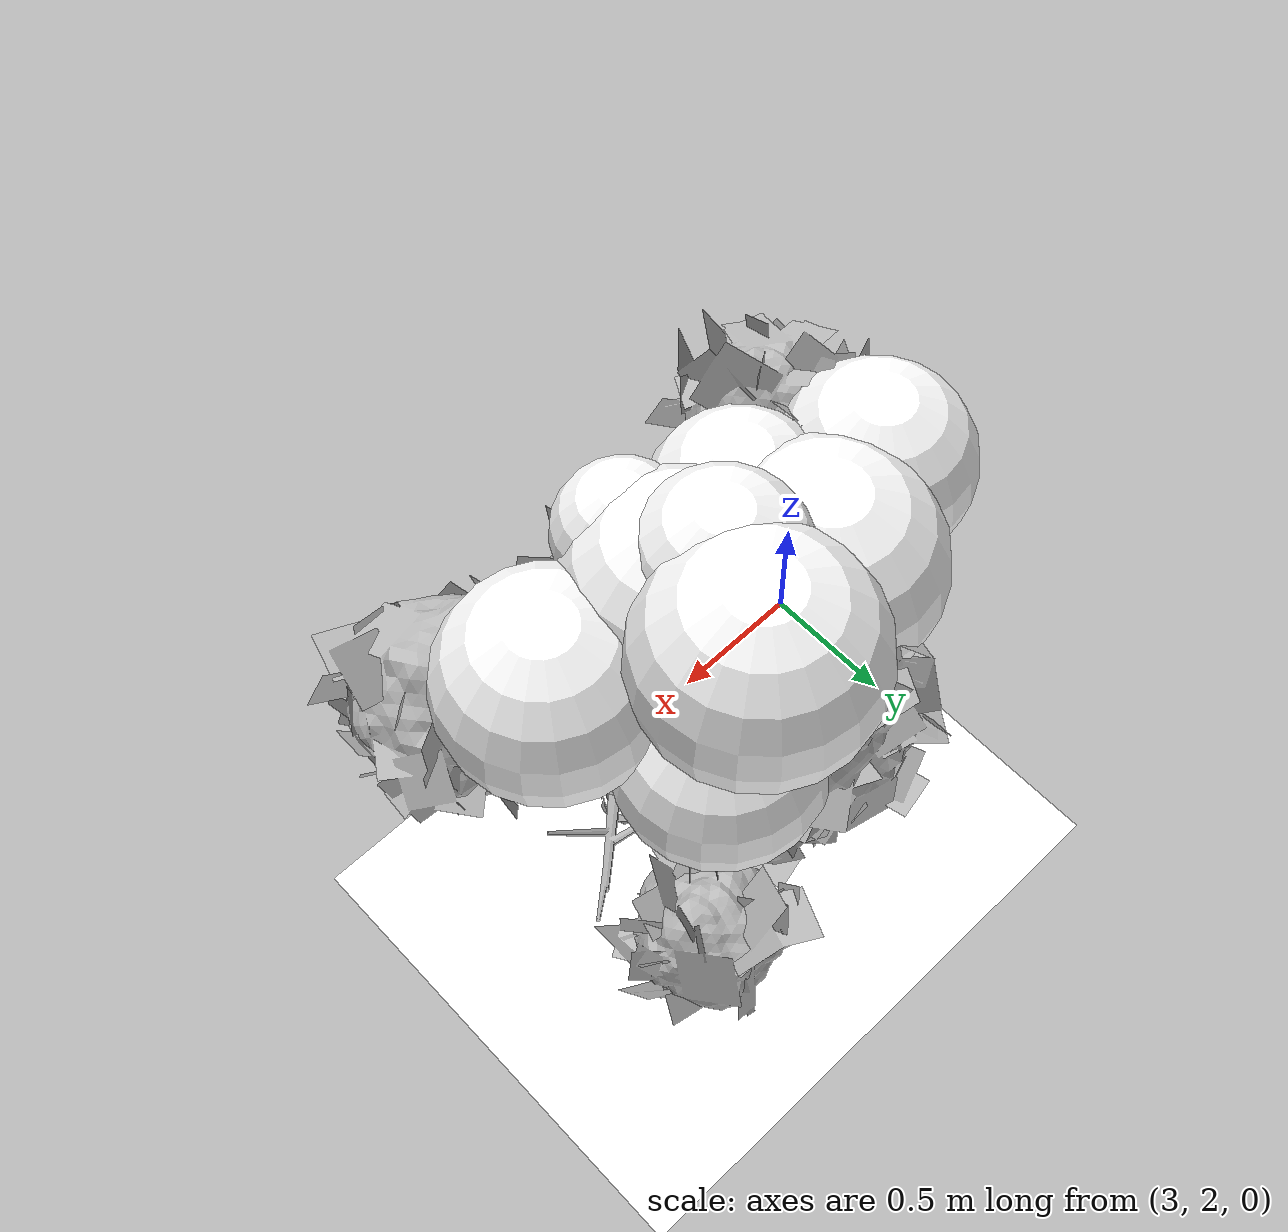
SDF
<sdf version="1.11">
 <world name="peach_orchard">
  <model name="ground">
   <static>true</static>
   <link name="link">
    <visual name="soil">
     <geometry><plane><normal>0 0 1</normal><size>32 22</size></plane></geometry>
     <material>
      <ambient>1 1 1 1</ambient>
      <diffuse>1 1 1 1</diffuse>
      <specular>0.1 0.1 0.1 1</specular>
      <pbr>
       <metal>
        <albedo_map>textures/soil_albedo.png</albedo_map>
        <normal_map type="tangent">textures/soil_normal.png</normal_map>
        <roughness>0.95</roughness>
        <metalness>0</metalness>
       </metal>
      </pbr>
     </material>
    </visual>
    <collision name="c_soil">
     <geometry><plane><normal>0 0 1</normal><size>32 22</size></plane></geometry>
    </collision>
   </link>
  </model>
  <model name="tree_r3_t4">
   <pose>4 2.2 0 0 0 0</pose>
   <static>true</static>
   <link name="link">
    <visual name="tree_mesh">
     <pose>0 0 0 0 0 0.0693268</pose>
     <geometry>
      <mesh><uri>model://peach_sim/meshes/peach_tree_a.glb</uri><scale>0.965581 0.965581 0.965581</scale></mesh>
     </geometry>
    </visual>
    <visual name="trunk_0">
     <pose>0 0 0.177539 0 0 0</pose>
     <geometry><cylinder><radius>0.0533133</radius><length>0.355077</length></cylinder></geometry>
     <material>
      <ambient>1 1 1 1</ambient>
      <diffuse>1 1 1 1</diffuse>
      <specular>0.1 0.1 0.1 1</specular>
      <pbr>
       <metal>
        <albedo_map>textures/bark_albedo.png</albedo_map>
        <normal_map type="tangent">textures/bark_normal.png</normal_map>
        <roughness>0.9</roughness>
        <metalness>0</metalness>
       </metal>
      </pbr>
     </material>
    </visual>
    <collision name="c_trunk_0">
     <pose>0 0 0.177539 0 0 0</pose>
     <geometry><cylinder><radius>0.0533133</radius><length>0.355077</length></cylinder></geometry>
    </collision>
    <visual name="trunk_1">
     <pose>0 0 0.500336 0 0 0</pose>
     <geometry><cylinder><radius>0.0383856</radius><length>0.290518</length></cylinder></geometry>
     <material>
      <ambient>1 1 1 1</ambient>
      <diffuse>1 1 1 1</diffuse>
      <specular>0.1 0.1 0.1 1</specular>
      <pbr>
       <metal>
        <albedo_map>textures/bark_albedo.png</albedo_map>
        <normal_map type="tangent">textures/bark_normal.png</normal_map>
        <roughness>0.9</roughness>
        <metalness>0</metalness>
       </metal>
      </pbr>
     </material>
    </visual>
    <collision name="c_trunk_1">
     <pose>0 0 0.500336 0 0 0</pose>
     <geometry><cylinder><radius>0.0383856</radius><length>0.290518</length></cylinder></geometry>
    </collision>
    <visual name="root_flare">
     <pose>0 0 0.035 0 0 0</pose>
     <geometry><cylinder><radius>0.0773043</radius><length>0.07</length></cylinder></geometry>
     <material>
      <ambient>1 1 1 1</ambient>
      <diffuse>1 1 1 1</diffuse>
      <specular>0.1 0.1 0.1 1</specular>
      <pbr>
       <metal>
        <albedo_map>textures/bark_albedo.png</albedo_map>
        <normal_map type="tangent">textures/bark_normal.png</normal_map>
        <roughness>0.95</roughness>
        <metalness>0</metalness>
       </metal>
      </pbr>
     </material>
    </visual>
    <visual name="scaffold_0">
     <pose>-0.0324891 0.293679 0.837471 0 0.88148 1.68098</pose>
     <geometry><cylinder><radius>0.022</radius><length>0.765786</length></cylinder></geometry>
     <material>
      <ambient>1 1 1 1</ambient>
      <diffuse>1 1 1 1</diffuse>
      <specular>0.1 0.1 0.1 1</specular>
      <pbr>
       <metal>
        <albedo_map>textures/bark_albedo.png</albedo_map>
        <normal_map type="tangent">textures/bark_normal.png</normal_map>
        <roughness>0.9</roughness>
        <metalness>0</metalness>
       </metal>
      </pbr>
     </material>
    </visual>
    <collision name="c_scaffold_0">
     <pose>-0.0324891 0.293679 0.837471 0 0.88148 1.68098</pose>
     <geometry><cylinder><radius>0.022</radius><length>0.765786</length></cylinder></geometry>
    </collision>
    <visual name="branchlet_0_0">
     <pose>-0.0448191 0.303635 1.01268 0 0.648829 -1.60466</pose>
     <geometry><cylinder><radius>0.012</radius><length>0.257342</length></cylinder></geometry>
     <material>
      <ambient>1 1 1 1</ambient>
      <diffuse>1 1 1 1</diffuse>
      <specular>0.1 0.1 0.1 1</specular>
      <pbr>
       <metal>
        <albedo_map>textures/bark_albedo.png</albedo_map>
        <normal_map type="tangent">textures/bark_normal.png</normal_map>
        <roughness>0.9</roughness>
        <metalness>0</metalness>
       </metal>
      </pbr>
     </material>
    </visual>
    <visual name="branchlet_0_1">
     <pose>-0.160521 0.280284 0.937951 0 1.24208 -2.58247</pose>
     <geometry><cylinder><radius>0.012</radius><length>0.301944</length></cylinder></geometry>
     <material>
      <ambient>1 1 1 1</ambient>
      <diffuse>1 1 1 1</diffuse>
      <specular>0.1 0.1 0.1 1</specular>
      <pbr>
       <metal>
        <albedo_map>textures/bark_albedo.png</albedo_map>
        <normal_map type="tangent">textures/bark_normal.png</normal_map>
        <roughness>0.9</roughness>
        <metalness>0</metalness>
       </metal>
      </pbr>
     </material>
    </visual>
    <visual name="scaffold_1">
     <pose>0.171014 0.343476 0.856422 0 0.970841 1.10884</pose>
     <geometry><cylinder><radius>0.022</radius><length>0.929762</length></cylinder></geometry>
     <material>
      <ambient>1 1 1 1</ambient>
      <diffuse>1 1 1 1</diffuse>
      <specular>0.1 0.1 0.1 1</specular>
      <pbr>
       <metal>
        <albedo_map>textures/bark_albedo.png</albedo_map>
        <normal_map type="tangent">textures/bark_normal.png</normal_map>
        <roughness>0.9</roughness>
        <metalness>0</metalness>
       </metal>
      </pbr>
     </material>
    </visual>
    <collision name="c_scaffold_1">
     <pose>0.171014 0.343476 0.856422 0 0.970841 1.10884</pose>
     <geometry><cylinder><radius>0.022</radius><length>0.929762</length></cylinder></geometry>
    </collision>
    <visual name="branchlet_1_0">
     <pose>0.25733 0.246177 0.930743 0 1.06347 -0.861131</pose>
     <geometry><cylinder><radius>0.012</radius><length>0.299592</length></cylinder></geometry>
     <material>
      <ambient>1 1 1 1</ambient>
      <diffuse>1 1 1 1</diffuse>
      <specular>0.1 0.1 0.1 1</specular>
      <pbr>
       <metal>
        <albedo_map>textures/bark_albedo.png</albedo_map>
        <normal_map type="tangent">textures/bark_normal.png</normal_map>
        <roughness>0.9</roughness>
        <metalness>0</metalness>
       </metal>
      </pbr>
     </material>
    </visual>
    <visual name="branchlet_1_1">
     <pose>0.246718 0.573461 0.966358 0 1.41756 1.43242</pose>
     <geometry><cylinder><radius>0.012</radius><length>0.221079</length></cylinder></geometry>
     <material>
      <ambient>1 1 1 1</ambient>
      <diffuse>1 1 1 1</diffuse>
      <specular>0.1 0.1 0.1 1</specular>
      <pbr>
       <metal>
        <albedo_map>textures/bark_albedo.png</albedo_map>
        <normal_map type="tangent">textures/bark_normal.png</normal_map>
        <roughness>0.9</roughness>
        <metalness>0</metalness>
       </metal>
      </pbr>
     </material>
    </visual>
    <visual name="scaffold_2">
     <pose>-0.240474 0.11956 0.806136 0 0.902117 2.6802</pose>
     <geometry><cylinder><radius>0.022</radius><length>0.684533</length></cylinder></geometry>
     <material>
      <ambient>1 1 1 1</ambient>
      <diffuse>1 1 1 1</diffuse>
      <specular>0.1 0.1 0.1 1</specular>
      <pbr>
       <metal>
        <albedo_map>textures/bark_albedo.png</albedo_map>
        <normal_map type="tangent">textures/bark_normal.png</normal_map>
        <roughness>0.9</roughness>
        <metalness>0</metalness>
       </metal>
      </pbr>
     </material>
    </visual>
    <collision name="c_scaffold_2">
     <pose>-0.240474 0.11956 0.806136 0 0.902117 2.6802</pose>
     <geometry><cylinder><radius>0.022</radius><length>0.684533</length></cylinder></geometry>
    </collision>
    <visual name="branchlet_2_0">
     <pose>-0.33321 0.162407 0.894194 0 0.867554 2.70313</pose>
     <geometry><cylinder><radius>0.012</radius><length>0.333808</length></cylinder></geometry>
     <material>
      <ambient>1 1 1 1</ambient>
      <diffuse>1 1 1 1</diffuse>
      <specular>0.1 0.1 0.1 1</specular>
      <pbr>
       <metal>
        <albedo_map>textures/bark_albedo.png</albedo_map>
        <normal_map type="tangent">textures/bark_normal.png</normal_map>
        <roughness>0.9</roughness>
        <metalness>0</metalness>
       </metal>
      </pbr>
     </material>
    </visual>
    <visual name="branchlet_2_1">
     <pose>-0.315838 -0.0126756 0.889428 0 1.08022 -2.07167</pose>
     <geometry><cylinder><radius>0.012</radius><length>0.344826</length></cylinder></geometry>
     <material>
      <ambient>1 1 1 1</ambient>
      <diffuse>1 1 1 1</diffuse>
      <specular>0.1 0.1 0.1 1</specular>
      <pbr>
       <metal>
        <albedo_map>textures/bark_albedo.png</albedo_map>
        <normal_map type="tangent">textures/bark_normal.png</normal_map>
        <roughness>0.9</roughness>
        <metalness>0</metalness>
       </metal>
      </pbr>
     </material>
    </visual>
    <visual name="canopy_0">
     <pose>0.113352 0.673372 2.1195 0 0 0</pose>
     <geometry><sphere><radius>0.307069</radius></sphere></geometry>
     <material>
      <ambient>1 1 1 1</ambient>
      <diffuse>1 1 1 1</diffuse>
      <specular>0.1 0.1 0.1 1</specular>
      <pbr>
       <metal>
        <albedo_map>textures/leaf_albedo.png</albedo_map>
        <normal_map type="tangent">textures/leaf_normal.png</normal_map>
        <roughness>0.85</roughness>
        <metalness>0</metalness>
       </metal>
      </pbr>
     </material>
    </visual>
    <collision name="c_canopy_0">
     <pose>0.113352 0.673372 2.1195 0 0 0</pose>
     <geometry><sphere><radius>0.307069</radius></sphere></geometry>
    </collision>
    <visual name="canopy_1">
     <pose>0.0823958 0.199726 2.06311 0 0 0</pose>
     <geometry><sphere><radius>0.180179</radius></sphere></geometry>
     <material>
      <ambient>1 1 1 1</ambient>
      <diffuse>1 1 1 1</diffuse>
      <specular>0.1 0.1 0.1 1</specular>
      <pbr>
       <metal>
        <albedo_map>textures/leaf_albedo.png</albedo_map>
        <normal_map type="tangent">textures/leaf_normal.png</normal_map>
        <roughness>0.85</roughness>
        <metalness>0</metalness>
       </metal>
      </pbr>
     </material>
    </visual>
    <collision name="c_canopy_1">
     <pose>0.0823958 0.199726 2.06311 0 0 0</pose>
     <geometry><sphere><radius>0.180179</radius></sphere></geometry>
    </collision>
    <visual name="canopy_2">
     <pose>-0.227088 0.274041 1.93861 0 0 0</pose>
     <geometry><sphere><radius>0.246663</radius></sphere></geometry>
     <material>
      <ambient>1 1 1 1</ambient>
      <diffuse>1 1 1 1</diffuse>
      <specular>0.1 0.1 0.1 1</specular>
      <pbr>
       <metal>
        <albedo_map>textures/leaf_albedo.png</albedo_map>
        <normal_map type="tangent">textures/leaf_normal.png</normal_map>
        <roughness>0.85</roughness>
        <metalness>0</metalness>
       </metal>
      </pbr>
     </material>
    </visual>
    <collision name="c_canopy_2">
     <pose>-0.227088 0.274041 1.93861 0 0 0</pose>
     <geometry><sphere><radius>0.246663</radius></sphere></geometry>
    </collision>
    <visual name="canopy_3">
     <pose>-0.251343 0.532139 1.93676 0 0 0</pose>
     <geometry><sphere><radius>0.314678</radius></sphere></geometry>
     <material>
      <ambient>1 1 1 1</ambient>
      <diffuse>1 1 1 1</diffuse>
      <specular>0.1 0.1 0.1 1</specular>
      <pbr>
       <metal>
        <albedo_map>textures/leaf_albedo.png</albedo_map>
        <normal_map type="tangent">textures/leaf_normal.png</normal_map>
        <roughness>0.85</roughness>
        <metalness>0</metalness>
       </metal>
      </pbr>
     </material>
    </visual>
    <visual name="canopy_4">
     <pose>0.274199 0.190933 1.66528 0 0 0</pose>
     <geometry><sphere><radius>0.243693</radius></sphere></geometry>
     <material>
      <ambient>1 1 1 1</ambient>
      <diffuse>1 1 1 1</diffuse>
      <specular>0.1 0.1 0.1 1</specular>
      <pbr>
       <metal>
        <albedo_map>textures/leaf_albedo.png</albedo_map>
        <normal_map type="tangent">textures/leaf_normal.png</normal_map>
        <roughness>0.85</roughness>
        <metalness>0</metalness>
       </metal>
      </pbr>
     </material>
    </visual>
    <visual name="canopy_5">
     <pose>-0.21995 0.462128 1.6005 0 0 0</pose>
     <geometry><sphere><radius>0.244752</radius></sphere></geometry>
     <material>
      <ambient>1 1 1 1</ambient>
      <diffuse>1 1 1 1</diffuse>
      <specular>0.1 0.1 0.1 1</specular>
      <pbr>
       <metal>
        <albedo_map>textures/leaf_albedo.png</albedo_map>
        <normal_map type="tangent">textures/leaf_normal.png</normal_map>
        <roughness>0.85</roughness>
        <metalness>0</metalness>
       </metal>
      </pbr>
     </material>
    </visual>
    <visual name="canopy_6">
     <pose>0.208736 0.660892 1.71647 0 0 0</pose>
     <geometry><sphere><radius>0.278551</radius></sphere></geometry>
     <material>
      <ambient>1 1 1 1</ambient>
      <diffuse>1 1 1 1</diffuse>
      <specular>0.1 0.1 0.1 1</specular>
      <pbr>
       <metal>
        <albedo_map>textures/leaf_albedo.png</albedo_map>
        <normal_map type="tangent">textures/leaf_normal.png</normal_map>
        <roughness>0.85</roughness>
        <metalness>0</metalness>
       </metal>
      </pbr>
     </material>
    </visual>
    <visual name="canopy_7">
     <pose>0.0155286 0.45758 2.14714 0 0 0</pose>
     <geometry><sphere><radius>0.228274</radius></sphere></geometry>
     <material>
      <ambient>1 1 1 1</ambient>
      <diffuse>1 1 1 1</diffuse>
      <specular>0.1 0.1 0.1 1</specular>
      <pbr>
       <metal>
        <albedo_map>textures/leaf_albedo.png</albedo_map>
        <normal_map type="tangent">textures/leaf_normal.png</normal_map>
        <roughness>0.85</roughness>
        <metalness>0</metalness>
       </metal>
      </pbr>
     </material>
    </visual>
    <visual name="canopy_8">
     <pose>-0.569821 0.407436 1.92161 0 0 0</pose>
     <geometry><sphere><radius>0.265573</radius></sphere></geometry>
     <material>
      <ambient>1 1 1 1</ambient>
      <diffuse>1 1 1 1</diffuse>
      <specular>0.1 0.1 0.1 1</specular>
      <pbr>
       <metal>
        <albedo_map>textures/leaf_albedo.png</albedo_map>
        <normal_map type="tangent">textures/leaf_normal.png</normal_map>
        <roughness>0.85</roughness>
        <metalness>0</metalness>
       </metal>
      </pbr>
     </material>
    </visual>
    <visual name="canopy_9">
     <pose>0.0727461 0.373927 1.99447 0 0 0</pose>
     <geometry><sphere><radius>0.297435</radius></sphere></geometry>
     <material>
      <ambient>1 1 1 1</ambient>
      <diffuse>1 1 1 1</diffuse>
      <specular>0.1 0.1 0.1 1</specular>
      <pbr>
       <metal>
        <albedo_map>textures/leaf_albedo.png</albedo_map>
        <normal_map type="tangent">textures/leaf_normal.png</normal_map>
        <roughness>0.85</roughness>
        <metalness>0</metalness>
       </metal>
      </pbr>
     </material>
    </visual>
    <visual name="canopy_10">
     <pose>0.42894 0.312975 1.90906 0 0 0</pose>
     <geometry><sphere><radius>0.290982</radius></sphere></geometry>
     <material>
      <ambient>1 1 1 1</ambient>
      <diffuse>1 1 1 1</diffuse>
      <specular>0.1 0.1 0.1 1</specular>
      <pbr>
       <metal>
        <albedo_map>textures/leaf_albedo.png</albedo_map>
        <normal_map type="tangent">textures/leaf_normal.png</normal_map>
        <roughness>0.85</roughness>
        <metalness>0</metalness>
       </metal>
      </pbr>
     </material>
    </visual>
    <visual name="canopy_11">
     <pose>-0.0367207 0.316789 1.6843 0 0 0</pose>
     <geometry><sphere><radius>0.1842</radius></sphere></geometry>
     <material>
      <ambient>1 1 1 1</ambient>
      <diffuse>1 1 1 1</diffuse>
      <specular>0.1 0.1 0.1 1</specular>
      <pbr>
       <metal>
        <albedo_map>textures/leaf_albedo.png</albedo_map>
        <normal_map type="tangent">textures/leaf_normal.png</normal_map>
        <roughness>0.85</roughness>
        <metalness>0</metalness>
       </metal>
      </pbr>
     </material>
    </visual>
    <visual name="foliage_0">
     <pose>0.145383 0.265055 1.35344 0 0 0</pose>
     <geometry><sphere><radius>0.116427</radius></sphere></geometry>
     <material>
      <ambient>1 1 1 1</ambient>
      <diffuse>1 1 1 1</diffuse>
      <specular>0.1 0.1 0.1 1</specular>
      <pbr>
       <metal>
        <albedo_map>textures/leaf_albedo.png</albedo_map>
        <normal_map type="tangent">textures/leaf_normal.png</normal_map>
        <roughness>0.85</roughness>
        <metalness>0</metalness>
       </metal>
      </pbr>
     </material>
    </visual>
    <visual name="foliage_4">
     <pose>0.216252 -0.0793563 1.45282 0 0 0</pose>
     <geometry><sphere><radius>0.112938</radius></sphere></geometry>
     <material>
      <ambient>1 1 1 1</ambient>
      <diffuse>1 1 1 1</diffuse>
      <specular>0.1 0.1 0.1 1</specular>
      <pbr>
       <metal>
        <albedo_map>textures/leaf_albedo.png</albedo_map>
        <normal_map type="tangent">textures/leaf_normal.png</normal_map>
        <roughness>0.85</roughness>
        <metalness>0</metalness>
       </metal>
      </pbr>
     </material>
    </visual>
    <visual name="twig_0">
     <pose>0.191111 0.326369 1.54768 0 0.528572 -2.70745</pose>
     <geometry><cylinder><radius>0.007</radius><length>0.143297</length></cylinder></geometry>
     <material>
      <ambient>1 1 1 1</ambient>
      <diffuse>1 1 1 1</diffuse>
      <specular>0.1 0.1 0.1 1</specular>
      <pbr>
       <metal>
        <albedo_map>textures/bark_albedo.png</albedo_map>
        <normal_map type="tangent">textures/bark_normal.png</normal_map>
        <roughness>0.9</roughness>
        <metalness>0</metalness>
       </metal>
      </pbr>
     </material>
    </visual>
    <visual name="twig_1">
     <pose>0.189896 0.484829 1.5477 0 0.449401 -2.68469</pose>
     <geometry><cylinder><radius>0.007</radius><length>0.150628</length></cylinder></geometry>
     <material>
      <ambient>1 1 1 1</ambient>
      <diffuse>1 1 1 1</diffuse>
      <specular>0.1 0.1 0.1 1</specular>
      <pbr>
       <metal>
        <albedo_map>textures/bark_albedo.png</albedo_map>
        <normal_map type="tangent">textures/bark_normal.png</normal_map>
        <roughness>0.9</roughness>
        <metalness>0</metalness>
       </metal>
      </pbr>
     </material>
    </visual>
    <visual name="twig_2">
     <pose>0.156708 0.61045 1.53626 0 0.705955 -3.07388</pose>
     <geometry><cylinder><radius>0.007</radius><length>0.164704</length></cylinder></geometry>
     <material>
      <ambient>1 1 1 1</ambient>
      <diffuse>1 1 1 1</diffuse>
      <specular>0.1 0.1 0.1 1</specular>
      <pbr>
       <metal>
        <albedo_map>textures/bark_albedo.png</albedo_map>
        <normal_map type="tangent">textures/bark_normal.png</normal_map>
        <roughness>0.9</roughness>
        <metalness>0</metalness>
       </metal>
      </pbr>
     </material>
    </visual>
    <visual name="twig_3">
     <pose>0.20963 0.71661 1.59791 0 0.197844 2.40624</pose>
     <geometry><cylinder><radius>0.007</radius><length>0.142205</length></cylinder></geometry>
     <material>
      <ambient>1 1 1 1</ambient>
      <diffuse>1 1 1 1</diffuse>
      <specular>0.1 0.1 0.1 1</specular>
      <pbr>
       <metal>
        <albedo_map>textures/bark_albedo.png</albedo_map>
        <normal_map type="tangent">textures/bark_normal.png</normal_map>
        <roughness>0.9</roughness>
        <metalness>0</metalness>
       </metal>
      </pbr>
     </material>
    </visual>
    <visual name="twig_4">
     <pose>0.181798 -0.0671927 1.50763 0 0.516303 2.49806</pose>
     <geometry><cylinder><radius>0.007</radius><length>0.192119</length></cylinder></geometry>
     <material>
      <ambient>1 1 1 1</ambient>
      <diffuse>1 1 1 1</diffuse>
      <specular>0.1 0.1 0.1 1</specular>
      <pbr>
       <metal>
        <albedo_map>textures/bark_albedo.png</albedo_map>
        <normal_map type="tangent">textures/bark_normal.png</normal_map>
        <roughness>0.9</roughness>
        <metalness>0</metalness>
       </metal>
      </pbr>
     </material>
    </visual>
    <visual name="twig_5">
     <pose>0.163031 -0.230638 1.42587 0 0.440992 3.10909</pose>
     <geometry><cylinder><radius>0.007</radius><length>0.100202</length></cylinder></geometry>
     <material>
      <ambient>1 1 1 1</ambient>
      <diffuse>1 1 1 1</diffuse>
      <specular>0.1 0.1 0.1 1</specular>
      <pbr>
       <metal>
        <albedo_map>textures/bark_albedo.png</albedo_map>
        <normal_map type="tangent">textures/bark_normal.png</normal_map>
        <roughness>0.9</roughness>
        <metalness>0</metalness>
       </metal>
      </pbr>
     </material>
    </visual>
    <visual name="twig_6">
     <pose>0.199936 -0.168725 1.50707 0 0.59053 2.79202</pose>
     <geometry><cylinder><radius>0.007</radius><length>0.172361</length></cylinder></geometry>
     <material>
      <ambient>1 1 1 1</ambient>
      <diffuse>1 1 1 1</diffuse>
      <specular>0.1 0.1 0.1 1</specular>
      <pbr>
       <metal>
        <albedo_map>textures/bark_albedo.png</albedo_map>
        <normal_map type="tangent">textures/bark_normal.png</normal_map>
        <roughness>0.9</roughness>
        <metalness>0</metalness>
       </metal>
      </pbr>
     </material>
    </visual>
   </link>
  </model>
 </world>
</sdf>
